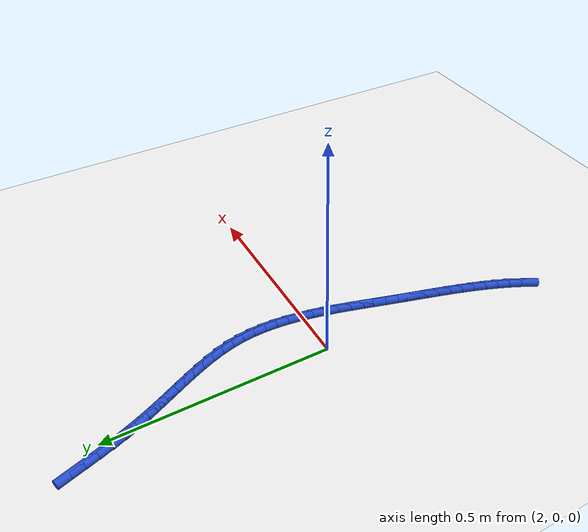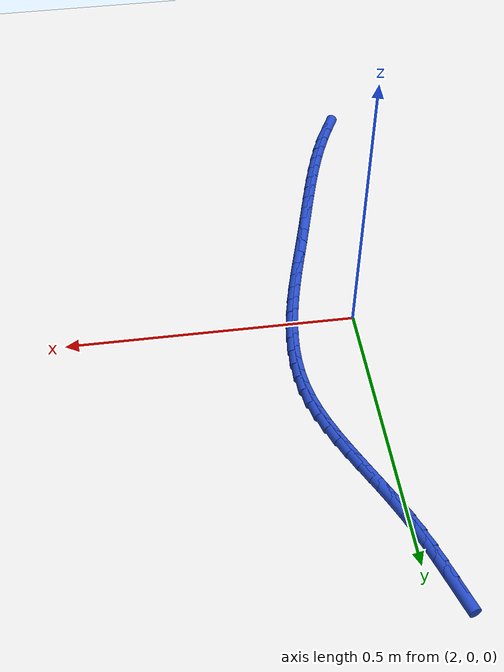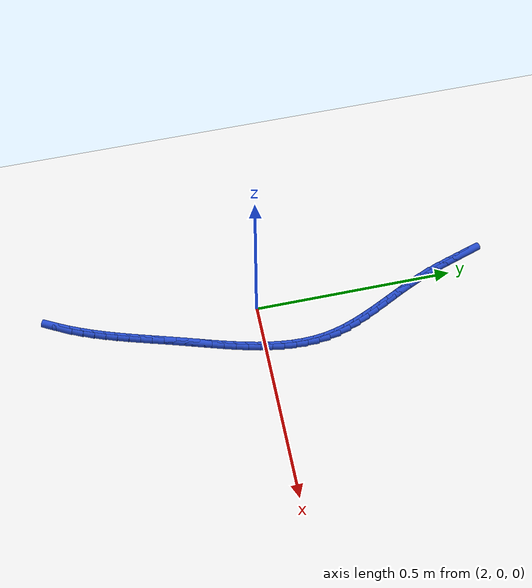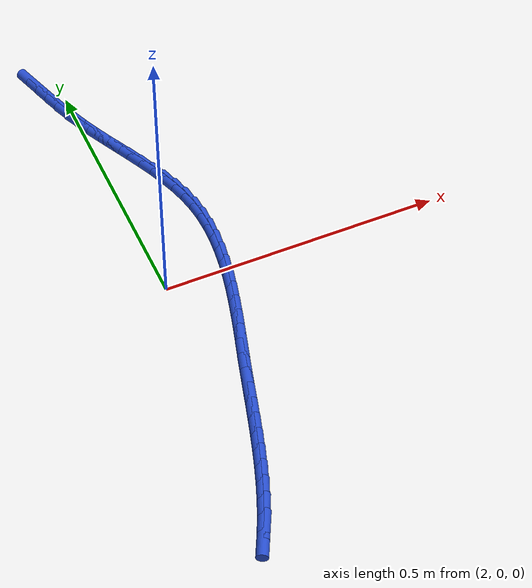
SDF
<sdf version="1.6">
 <world name="default">
  <model name="ground_plane">
   <static>1</static>
   <link name="link">
    <collision name="collision">
     <geometry><plane><normal>0 0 1</normal><size>100 100</size></plane></geometry>
     <surface><friction><ode><mu>100</mu><mu2>50</mu2></ode></friction></surface>
    </collision>
    <visual name="visual">
     <cast_shadows>0</cast_shadows>
     <geometry><plane><normal>0 0 1</normal><size>100 100</size></plane></geometry>
     <material>
      <script><uri>file://media/materials/scripts/gazebo.material</uri><name>Gazebo/WhiteGlow</name></script>
     </material>
    </visual>
   </link>
  </model>
  <model name="line">
   <link name="link_96">
    <pose>1.95690485778184 0.5541397134494552 0.01 0 1.57 -1.2638781739038973</pose>
    <collision name="collision">
     <geometry><cylinder><radius>0.01</radius><length>0.08</length></cylinder></geometry>
    </collision>
    <visual name="visual">
     <material>
      <script><name>Gazebo/Blue</name><uri>file://media/materials/scripts/gazebo.material</uri></script>
     </material>
     <geometry><cylinder><radius>0.01</radius><length>0.08</length></cylinder></geometry>
    </visual>
   </link>
   <link name="link_97">
    <pose>1.9656953371262778 0.5264036124621307 0.01 0 1.57 -1.2602812754755597</pose>
    <collision name="collision">
     <geometry><cylinder><radius>0.01</radius><length>0.08</length></cylinder></geometry>
    </collision>
    <visual name="visual">
     <material>
      <script><name>Gazebo/Blue</name><uri>file://media/materials/scripts/gazebo.material</uri></script>
     </material>
     <geometry><cylinder><radius>0.01</radius><length>0.08</length></cylinder></geometry>
    </visual>
   </link>
   <link name="link_98">
    <pose>1.9746110264665961 0.4986198343901486 0.01 0 1.57 -1.246829490448345</pose>
    <collision name="collision">
     <geometry><cylinder><radius>0.01</radius><length>0.08</length></cylinder></geometry>
    </collision>
    <visual name="visual">
     <material>
      <script><name>Gazebo/Blue</name><uri>file://media/materials/scripts/gazebo.material</uri></script>
     </material>
     <geometry><cylinder><radius>0.01</radius><length>0.08</length></cylinder></geometry>
    </visual>
   </link>
   <link name="link_99">
    <pose>1.9839235788091862 0.47088720690489555 0.01 0 1.57 -1.2235947731361267</pose>
    <collision name="collision">
     <geometry><cylinder><radius>0.01</radius><length>0.08</length></cylinder></geometry>
    </collision>
    <visual name="visual">
     <material>
      <script><name>Gazebo/Blue</name><uri>file://media/materials/scripts/gazebo.material</uri></script>
     </material>
     <geometry><cylinder><radius>0.01</radius><length>0.08</length></cylinder></geometry>
    </visual>
   </link>
   <link name="link_100">
    <pose>1.993904647160441 0.4433045576777601 0.01 0 1.57 -1.190716886201418</pose>
    <collision name="collision">
     <geometry><cylinder><radius>0.01</radius><length>0.08</length></cylinder></geometry>
    </collision>
    <visual name="visual">
     <material>
      <script><name>Gazebo/Blue</name><uri>file://media/materials/scripts/gazebo.material</uri></script>
     </material>
     <geometry><cylinder><radius>0.01</radius><length>0.08</length></cylinder></geometry>
    </visual>
   </link>
   <link name="link_101">
    <pose>2.004824768575674 0.415970417081917 0.01 0 1.57 -1.1548493628880758</pose>
    <collision name="collision">
     <geometry><cylinder><radius>0.01</radius><length>0.08</length></cylinder></geometry>
    </collision>
    <visual name="visual">
     <material>
      <script><name>Gazebo/Blue</name><uri>file://media/materials/scripts/gazebo.material</uri></script>
     </material>
     <geometry><cylinder><radius>0.01</radius><length>0.08</length></cylinder></geometry>
    </visual>
   </link>
   <link name="link_102">
    <pose>2.016767512513032 0.3889335058407728 0.01 0 1.57 -1.1296140148487641</pose>
    <collision name="collision">
     <geometry><cylinder><radius>0.01</radius><length>0.08</length></cylinder></geometry>
    </collision>
    <visual name="visual">
     <material>
      <script><name>Gazebo/Blue</name><uri>file://media/materials/scripts/gazebo.material</uri></script>
     </material>
     <geometry><cylinder><radius>0.01</radius><length>0.08</length></cylinder></geometry>
    </visual>
   </link>
   <link name="link_103">
    <pose>2.029421372350229 0.36213729327857686 0.01 0 1.57 -1.1164892690183954</pose>
    <collision name="collision">
     <geometry><cylinder><radius>0.01</radius><length>0.08</length></cylinder></geometry>
    </collision>
    <visual name="visual">
     <material>
      <script><name>Gazebo/Blue</name><uri>file://media/materials/scripts/gazebo.material</uri></script>
     </material>
     <geometry><cylinder><radius>0.01</radius><length>0.08</length></cylinder></geometry>
    </visual>
   </link>
   <link name="link_104">
    <pose>2.042424646812195 0.33551187646624175 0.01 0 1.57 -1.115363979279237</pose>
    <collision name="collision">
     <geometry><cylinder><radius>0.01</radius><length>0.08</length></cylinder></geometry>
    </collision>
    <visual name="visual">
     <material>
      <script><name>Gazebo/Blue</name><uri>file://media/materials/scripts/gazebo.material</uri></script>
     </material>
     <geometry><cylinder><radius>0.01</radius><length>0.08</length></cylinder></geometry>
    </visual>
   </link>
   <link name="link_105">
    <pose>2.0554156346238655 0.30898735247467907 0.01 0 1.57 -1.126345387182478</pose>
    <collision name="collision">
     <geometry><cylinder><radius>0.01</radius><length>0.08</length></cylinder></geometry>
    </collision>
    <visual name="visual">
     <material>
      <script><name>Gazebo/Blue</name><uri>file://media/materials/scripts/gazebo.material</uri></script>
     </material>
     <geometry><cylinder><radius>0.01</radius><length>0.08</length></cylinder></geometry>
    </visual>
   </link>
   <link name="link_106">
    <pose>2.06803263451017 0.28249381837480125 0.01 0 1.57 -1.1497708894284482</pose>
    <collision name="collision">
     <geometry><cylinder><radius>0.01</radius><length>0.08</length></cylinder></geometry>
    </collision>
    <visual name="visual">
     <material>
      <script><name>Gazebo/Blue</name><uri>file://media/materials/scripts/gazebo.material</uri></script>
     </material>
     <geometry><cylinder><radius>0.01</radius><length>0.08</length></cylinder></geometry>
    </visual>
   </link>
   <link name="link_107">
    <pose>2.079913945196042 0.2559613712375202 0.01 0 1.57 -1.1861738151602712</pose>
    <collision name="collision">
     <geometry><cylinder><radius>0.01</radius><length>0.08</length></cylinder></geometry>
    </collision>
    <visual name="visual">
     <material>
      <script><name>Gazebo/Blue</name><uri>file://media/materials/scripts/gazebo.material</uri></script>
     </material>
     <geometry><cylinder><radius>0.01</radius><length>0.08</length></cylinder></geometry>
    </visual>
   </link>
   <link name="link_108">
    <pose>2.0906978654064137 0.22932010813374773 0.01 0 1.57 -1.2361879157764202</pose>
    <collision name="collision">
     <geometry><cylinder><radius>0.01</radius><length>0.08</length></cylinder></geometry>
    </collision>
    <visual name="visual">
     <material>
      <script><name>Gazebo/Blue</name><uri>file://media/materials/scripts/gazebo.material</uri></script>
     </material>
     <geometry><cylinder><radius>0.01</radius><length>0.08</length></cylinder></geometry>
    </visual>
   </link>
   <link name="link_109">
    <pose>2.1000226938662174 0.20250012613439636 0.01 0 1.57 -1.300364728826515</pose>
    <collision name="collision">
     <geometry><cylinder><radius>0.01</radius><length>0.08</length></cylinder></geometry>
    </collision>
    <visual name="visual">
     <material>
      <script><name>Gazebo/Blue</name><uri>file://media/materials/scripts/gazebo.material</uri></script>
     </material>
     <geometry><cylinder><radius>0.01</radius><length>0.08</length></cylinder></geometry>
    </visual>
   </link>
   <link name="link_110">
    <pose>2.1075267293003854 0.17543152231037748 0.01 0 1.57 -1.378684575942241</pose>
    <collision name="collision">
     <geometry><cylinder><radius>0.01</radius><length>0.08</length></cylinder></geometry>
    </collision>
    <visual name="visual">
     <material>
      <script><name>Gazebo/Blue</name><uri>file://media/materials/scripts/gazebo.material</uri></script>
     </material>
     <geometry><cylinder><radius>0.01</radius><length>0.08</length></cylinder></geometry>
    </visual>
   </link>
   <link name="link_111">
    <pose>2.1128536129748854 0.1480454364730713 0.01 0 1.57 -1.4621611467719855</pose>
    <collision name="collision">
     <geometry><cylinder><radius>0.01</radius><length>0.08</length></cylinder></geometry>
    </collision>
    <visual name="visual">
     <material>
      <script><name>Gazebo/Blue</name><uri>file://media/materials/scripts/gazebo.material</uri></script>
     </material>
     <geometry><cylinder><radius>0.01</radius><length>0.08</length></cylinder></geometry>
    </visual>
   </link>
   <link name="link_112">
    <pose>2.1158776897562914 0.1203180364418273 0.01 0 1.57 -1.5383674001382428</pose>
    <collision name="collision">
     <geometry><cylinder><radius>0.01</radius><length>0.08</length></cylinder></geometry>
    </collision>
    <visual name="visual">
     <material>
      <script><name>Gazebo/Blue</name><uri>file://media/materials/scripts/gazebo.material</uri></script>
     </material>
     <geometry><cylinder><radius>0.01</radius><length>0.08</length></cylinder></geometry>
    </visual>
   </link>
   <link name="link_113">
    <pose>2.116787033959958 0.09228672276961292 0.01 0 1.57 1.535648145471556</pose>
    <collision name="collision">
     <geometry><cylinder><radius>0.01</radius><length>0.08</length></cylinder></geometry>
    </collision>
    <visual name="visual">
     <material>
      <script><name>Gazebo/Blue</name><uri>file://media/materials/scripts/gazebo.material</uri></script>
     </material>
     <geometry><cylinder><radius>0.01</radius><length>0.08</length></cylinder></geometry>
    </visual>
   </link>
   <link name="link_114">
    <pose>2.1157921610420383 0.06399327600114188 0.01 0 1.57 1.4767839837140635</pose>
    <collision name="collision">
     <geometry><cylinder><radius>0.01</radius><length>0.08</length></cylinder></geometry>
    </collision>
    <visual name="visual">
     <material>
      <script><name>Gazebo/Blue</name><uri>file://media/materials/scripts/gazebo.material</uri></script>
     </material>
     <geometry><cylinder><radius>0.01</radius><length>0.08</length></cylinder></geometry>
    </visual>
   </link>
   <link name="link_115">
    <pose>2.1131035864586862 0.035479476681129364 0.01 0 1.57 1.4264119185230866</pose>
    <collision name="collision">
     <geometry><cylinder><radius>0.01</radius><length>0.08</length></cylinder></geometry>
    </collision>
    <visual name="visual">
     <material>
      <script><name>Gazebo/Blue</name><uri>file://media/materials/scripts/gazebo.material</uri></script>
     </material>
     <geometry><cylinder><radius>0.01</radius><length>0.08</length></cylinder></geometry>
    </visual>
   </link>
   <link name="link_116">
    <pose>2.108931825666057 0.006787105354289386 0.01 0 1.57 1.384143066617809</pose>
    <collision name="collision">
     <geometry><cylinder><radius>0.01</radius><length>0.08</length></cylinder></geometry>
    </collision>
    <visual name="visual">
     <material>
      <script><name>Gazebo/Blue</name><uri>file://media/materials/scripts/gazebo.material</uri></script>
     </material>
     <geometry><cylinder><radius>0.01</radius><length>0.08</length></cylinder></geometry>
    </visual>
   </link>
   <link name="link_117">
    <pose>2.103487394120303 -0.02204205743466437 0.01 0 1.57 1.3495263834030613</pose>
    <collision name="collision">
     <geometry><cylinder><radius>0.01</radius><length>0.08</length></cylinder></geometry>
    </collision>
    <visual name="visual">
     <material>
      <script><name>Gazebo/Blue</name><uri>file://media/materials/scripts/gazebo.material</uri></script>
     </material>
     <geometry><cylinder><radius>0.01</radius><length>0.08</length></cylinder></geometry>
    </visual>
   </link>
   <link name="link_118">
    <pose>2.096980807277579 -0.05096623114101597 0.01 0 1.57 1.3221224535401892</pose>
    <collision name="collision">
     <geometry><cylinder><radius>0.01</radius><length>0.08</length></cylinder></geometry>
    </collision>
    <visual name="visual">
     <material>
      <script><name>Gazebo/Blue</name><uri>file://media/materials/scripts/gazebo.material</uri></script>
     </material>
     <geometry><cylinder><radius>0.01</radius><length>0.08</length></cylinder></geometry>
    </visual>
   </link>
   <link name="link_119">
    <pose>2.089622580594039 -0.07994363522005177 0.01 0 1.57 1.30155107128968</pose>
    <collision name="collision">
     <geometry><cylinder><radius>0.01</radius><length>0.08</length></cylinder></geometry>
    </collision>
    <visual name="visual">
     <material>
      <script><name>Gazebo/Blue</name><uri>file://media/materials/scripts/gazebo.material</uri></script>
     </material>
     <geometry><cylinder><radius>0.01</radius><length>0.08</length></cylinder></geometry>
    </visual>
   </link>
   <link name="link_120">
    <pose>2.081623229525836 -0.10893248912705727 0.01 0 1.57 1.2875202745889072</pose>
    <collision name="collision">
     <geometry><cylinder><radius>0.01</radius><length>0.08</length></cylinder></geometry>
    </collision>
    <visual name="visual">
     <material>
      <script><name>Gazebo/Blue</name><uri>file://media/materials/scripts/gazebo.material</uri></script>
     </material>
     <geometry><cylinder><radius>0.01</radius><length>0.08</length></cylinder></geometry>
    </visual>
   </link>
   <link name="link_121">
    <pose>2.0731932695291255 -0.13789101231731812 0.01 0 1.57 1.2798436424941895</pose>
    <collision name="collision">
     <geometry><cylinder><radius>0.01</radius><length>0.08</length></cylinder></geometry>
    </collision>
    <visual name="visual">
     <material>
      <script><name>Gazebo/Blue</name><uri>file://media/materials/scripts/gazebo.material</uri></script>
     </material>
     <geometry><cylinder><radius>0.01</radius><length>0.08</length></cylinder></geometry>
    </visual>
   </link>
   <link name="link_122">
    <pose>2.06454321606006 -0.16677742424612063 0.01 0 1.57 1.2784509420332393</pose>
    <collision name="collision">
     <geometry><cylinder><radius>0.01</radius><length>0.08</length></cylinder></geometry>
    </collision>
    <visual name="visual">
     <material>
      <script><name>Gazebo/Blue</name><uri>file://media/materials/scripts/gazebo.material</uri></script>
     </material>
     <geometry><cylinder><radius>0.01</radius><length>0.08</length></cylinder></geometry>
    </visual>
   </link>
   <link name="link_123">
    <pose>2.055883584574794 -0.19554994436874887 0.01 0 1.57 1.2830816504246396</pose>
    <collision name="collision">
     <geometry><cylinder><radius>0.01</radius><length>0.08</length></cylinder></geometry>
    </collision>
    <visual name="visual">
     <material>
      <script><name>Gazebo/Blue</name><uri>file://media/materials/scripts/gazebo.material</uri></script>
     </material>
     <geometry><cylinder><radius>0.01</radius><length>0.08</length></cylinder></geometry>
    </visual>
   </link>
   <link name="link_124">
    <pose>2.0474149310738015 -0.22416744882661777 0.01 0 1.57 1.288264043901314</pose>
    <collision name="collision">
     <geometry><cylinder><radius>0.01</radius><length>0.08</length></cylinder></geometry>
    </collision>
    <visual name="visual">
     <material>
      <script><name>Gazebo/Blue</name><uri>file://media/materials/scripts/gazebo.material</uri></script>
     </material>
     <geometry><cylinder><radius>0.01</radius><length>0.08</length></cylinder></geometry>
    </visual>
   </link>
   <link name="link_125">
    <pose>2.0391608789831595 -0.2526004799777555 0.01 0 1.57 1.2891455599697939</pose>
    <collision name="collision">
     <geometry><cylinder><radius>0.01</radius><length>0.08</length></cylinder></geometry>
    </collision>
    <visual name="visual">
     <material>
      <script><name>Gazebo/Blue</name><uri>file://media/materials/scripts/gazebo.material</uri></script>
     </material>
     <geometry><cylinder><radius>0.01</radius><length>0.08</length></cylinder></geometry>
    </visual>
   </link>
   <link name="link_126">
    <pose>2.0309929947006116 -0.2808296062041503 0.01 0 1.57 1.285467852082262</pose>
    <collision name="collision">
     <geometry><cylinder><radius>0.01</radius><length>0.08</length></cylinder></geometry>
    </collision>
    <visual name="visual">
     <material>
      <script><name>Gazebo/Blue</name><uri>file://media/materials/scripts/gazebo.material</uri></script>
     </material>
     <geometry><cylinder><radius>0.01</radius><length>0.08</length></cylinder></geometry>
    </visual>
   </link>
   <link name="link_127">
    <pose>2.0227778961070557 -0.3088357221729266 0.01 0 1.57 1.2771437312887681</pose>
    <collision name="collision">
     <geometry><cylinder><radius>0.01</radius><length>0.08</length></cylinder></geometry>
    </collision>
    <visual name="visual">
     <material>
      <script><name>Gazebo/Blue</name><uri>file://media/materials/scripts/gazebo.material</uri></script>
     </material>
     <geometry><cylinder><radius>0.01</radius><length>0.08</length></cylinder></geometry>
    </visual>
   </link>
   <link name="link_128">
    <pose>2.014382201083392 -0.3365997225512107 0.01 0 1.57 1.2641048036257845</pose>
    <collision name="collision">
     <geometry><cylinder><radius>0.01</radius><length>0.08</length></cylinder></geometry>
    </collision>
    <visual name="visual">
     <material>
      <script><name>Gazebo/Blue</name><uri>file://media/materials/scripts/gazebo.material</uri></script>
     </material>
     <geometry><cylinder><radius>0.01</radius><length>0.08</length></cylinder></geometry>
    </visual>
   </link>
   <link name="link_129">
    <pose>2.0056725275105194 -0.36410250200612815 0.01 0 1.57 1.24630808384164</pose>
    <collision name="collision">
     <geometry><cylinder><radius>0.01</radius><length>0.08</length></cylinder></geometry>
    </collision>
    <visual name="visual">
     <material>
      <script><name>Gazebo/Blue</name><uri>file://media/materials/scripts/gazebo.material</uri></script>
     </material>
     <geometry><cylinder><radius>0.01</radius><length>0.08</length></cylinder></geometry>
    </visual>
   </link>
   <link name="link_130">
    <pose>1.9965154932693359 -0.39132495520480454 0.01 0 1.57 1.2237457979289152</pose>
    <collision name="collision">
     <geometry><cylinder><radius>0.01</radius><length>0.08</length></cylinder></geometry>
    </collision>
    <visual name="visual">
     <material>
      <script><name>Gazebo/Blue</name><uri>file://media/materials/scripts/gazebo.material</uri></script>
     </material>
     <geometry><cylinder><radius>0.01</radius><length>0.08</length></cylinder></geometry>
    </visual>
   </link>
   <link name="link_131">
    <pose>1.9867777162407414 -0.4182479768143663 0.01 0 1.57 1.1964581490525694</pose>
    <collision name="collision">
     <geometry><cylinder><radius>0.01</radius><length>0.08</length></cylinder></geometry>
    </collision>
    <visual name="visual">
     <material>
      <script><name>Gazebo/Blue</name><uri>file://media/materials/scripts/gazebo.material</uri></script>
     </material>
     <geometry><cylinder><radius>0.01</radius><length>0.08</length></cylinder></geometry>
    </visual>
   </link>
   <link name="link_132">
    <pose>1.9763258143056346 -0.4448524615019377 0.01 0 1.57 1.1645483367047984</pose>
    <collision name="collision">
     <geometry><cylinder><radius>0.01</radius><length>0.08</length></cylinder></geometry>
    </collision>
    <visual name="visual">
     <material>
      <script><name>Gazebo/Blue</name><uri>file://media/materials/scripts/gazebo.material</uri></script>
     </material>
     <geometry><cylinder><radius>0.01</radius><length>0.08</length></cylinder></geometry>
    </visual>
   </link>
   <link name="link_133">
    <pose>1.9650264053449142 -0.47111930393464496 0.01 0 1.57 1.1290409562153552</pose>
    <collision name="collision">
     <geometry><cylinder><radius>0.01</radius><length>0.08</length></cylinder></geometry>
    </collision>
    <visual name="visual">
     <material>
      <script><name>Gazebo/Blue</name><uri>file://media/materials/scripts/gazebo.material</uri></script>
     </material>
     <geometry><cylinder><radius>0.01</radius><length>0.08</length></cylinder></geometry>
    </visual>
   </link>
   <link name="link_134">
    <pose>1.9527706155835844 -0.49703407918260706 0.01 0 1.57 1.0953781768069202</pose>
    <collision name="collision">
     <geometry><cylinder><radius>0.01</radius><length>0.08</length></cylinder></geometry>
    </collision>
    <visual name="visual">
     <material>
      <script><name>Gazebo/Blue</name><uri>file://media/materials/scripts/gazebo.material</uri></script>
     </material>
     <geometry><cylinder><radius>0.01</radius><length>0.08</length></cylinder></geometry>
    </visual>
   </link>
  </model>
 </world>
</sdf>
